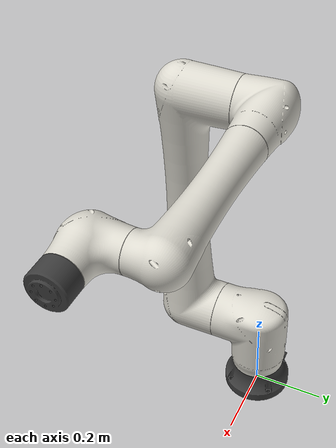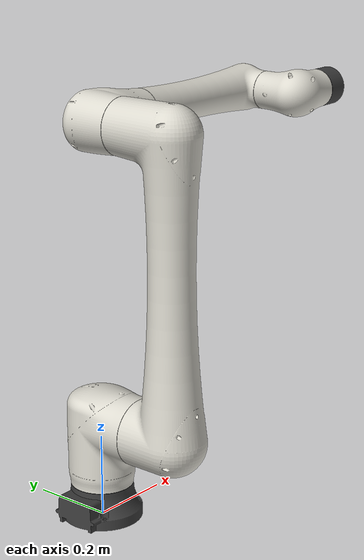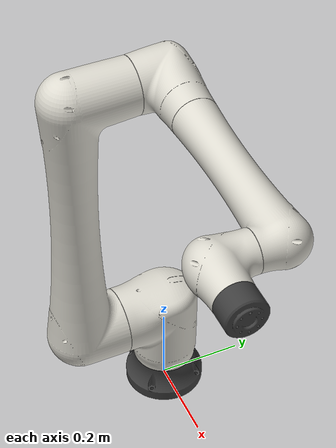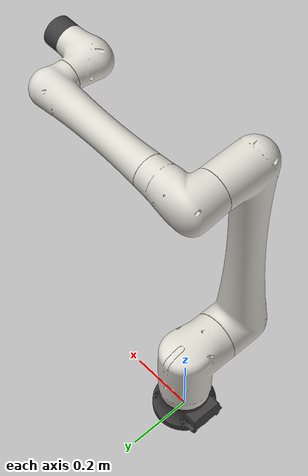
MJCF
<?xml version="1.0" ?>
<!-- MuJoCo model for FANUC CRX10IAL -->
<!-- Auto-generated from fanuc-industrial/fanuc_crx10ia_support -->
<mujoco model="crx10ial">
  <compiler angle="radian" autolimits="true"/>

  <default>
    <default class="crx10ial">
      <joint damping="100" frictionloss="10" armature="1"/>
      <position kp="1000" kv="100"/>
      <default class="visual">
        <geom type="mesh" contype="0" conaffinity="0" group="2"/>
      </default>
      <default class="collision">
        <geom type="mesh" group="3"/>
      </default>
    </default>
  </default>

  <asset>
    <mesh name="base_link_visual" file="../../fanuc-industrial/fanuc_crx10ia_support/meshes/crx10ial/visual/base_link.stl"/>
    <mesh name="base_link_collision" file="../../fanuc-industrial/fanuc_crx10ia_support/meshes/crx10ial/collision/base_link.stl"/>
    <mesh name="link_1_visual" file="../../fanuc-industrial/fanuc_crx10ia_support/meshes/crx10ial/visual/link_1.stl"/>
    <mesh name="link_1_collision" file="../../fanuc-industrial/fanuc_crx10ia_support/meshes/crx10ial/collision/link_1.stl"/>
    <mesh name="link_2_visual" file="../../fanuc-industrial/fanuc_crx10ia_support/meshes/crx10ial/visual/link_2.stl"/>
    <mesh name="link_2_collision" file="../../fanuc-industrial/fanuc_crx10ia_support/meshes/crx10ial/collision/link_2.stl"/>
    <mesh name="link_3_visual" file="../../fanuc-industrial/fanuc_crx10ia_support/meshes/crx10ial/visual/link_3.stl"/>
    <mesh name="link_3_collision" file="../../fanuc-industrial/fanuc_crx10ia_support/meshes/crx10ial/collision/link_3.stl"/>
    <mesh name="link_4_visual" file="../../fanuc-industrial/fanuc_crx10ia_support/meshes/crx10ial/visual/link_4.stl"/>
    <mesh name="link_4_collision" file="../../fanuc-industrial/fanuc_crx10ia_support/meshes/crx10ial/collision/link_4.stl"/>
    <mesh name="link_5_visual" file="../../fanuc-industrial/fanuc_crx10ia_support/meshes/crx10ial/visual/link_5.stl"/>
    <mesh name="link_5_collision" file="../../fanuc-industrial/fanuc_crx10ia_support/meshes/crx10ial/collision/link_5.stl"/>
    <mesh name="link_6_visual" file="../../fanuc-industrial/fanuc_crx10ia_support/meshes/crx10ial/visual/link_6.stl"/>
    <mesh name="link_6_collision" file="../../fanuc-industrial/fanuc_crx10ia_support/meshes/crx10ial/collision/link_6.stl"/>
  </asset>

  <worldbody>
    <body name="base_link" childclass="crx10ial">
      <inertial pos="0 0 0" mass="1.0" diaginertia="0.01 0.01 0.01"/>
      <geom class="visual" mesh="base_link_visual" rgba="0.239 0.239 0.239 1.000"/>
      <geom class="collision" mesh="base_link_collision"/>
      <body name="link_1" pos="0 0 0.245" childclass="crx10ial">
        <joint name="joint_1" type="hinge" axis="0 0 1" range="-3.1416 3.1416"/>
        <inertial pos="0 0 0" mass="1.0" diaginertia="0.01 0.01 0.01"/>
        <geom class="visual" mesh="link_1_visual" rgba="0.860 0.850 0.810 1.000"/>
        <geom class="collision" mesh="link_1_collision"/>
        <body name="link_2" pos="0 0 0" childclass="crx10ial">
          <joint name="joint_2" type="hinge" axis="0 1 0" range="-3.1416 3.1416"/>
          <inertial pos="0 0 0" mass="1.0" diaginertia="0.01 0.01 0.01"/>
          <geom class="visual" mesh="link_2_visual" rgba="0.860 0.850 0.810 1.000"/>
          <geom class="collision" mesh="link_2_collision"/>
          <body name="link_3" pos="0 0 0.710" childclass="crx10ial">
            <joint name="joint_3" type="hinge" axis="0 -1 0" range="-4.7124 4.7124"/>
            <inertial pos="0 0 0" mass="1.0" diaginertia="0.01 0.01 0.01"/>
            <geom class="visual" mesh="link_3_visual" rgba="0.860 0.850 0.810 1.000"/>
            <geom class="collision" mesh="link_3_collision"/>
            <body name="link_4" pos="0 0 0" childclass="crx10ial">
              <joint name="joint_4" type="hinge" axis="-1 0 0" range="-3.3161 3.3161"/>
              <inertial pos="0 0 0" mass="1.0" diaginertia="0.01 0.01 0.01"/>
              <geom class="visual" mesh="link_4_visual" rgba="0.860 0.850 0.810 1.000"/>
              <geom class="collision" mesh="link_4_collision"/>
              <body name="link_5" pos="0.540 -0.150 0" childclass="crx10ial">
                <joint name="joint_5" type="hinge" axis="0 -1 0" range="-3.1416 3.1416"/>
                <inertial pos="0 0 0" mass="1.0" diaginertia="0.01 0.01 0.01"/>
                <geom class="visual" mesh="link_5_visual" rgba="0.860 0.850 0.810 1.000"/>
                <geom class="collision" mesh="link_5_collision"/>
                <body name="link_6" pos="0.160 0 0" childclass="crx10ial">
                  <joint name="joint_6" type="hinge" axis="-1 0 0" range="-3.3161 3.3161"/>
                  <inertial pos="0 0 0" mass="1.0" diaginertia="0.01 0.01 0.01"/>
                  <geom class="visual" mesh="link_6_visual" rgba="0.239 0.239 0.239 1.000"/>
                  <geom class="collision" mesh="link_6_collision"/>
                </body>
              </body>
            </body>
          </body>
        </body>
      </body>
    </body>
  </worldbody>

  <contact>
    <!-- Exclude collisions between adjacent links (parent-child pairs) -->
    <exclude body1="base_link" body2="link_1"/>
    <exclude body1="link_1" body2="link_2"/>
    <exclude body1="link_2" body2="link_3"/>
    <exclude body1="link_3" body2="link_4"/>
    <exclude body1="link_4" body2="link_5"/>
    <exclude body1="link_5" body2="link_6"/>
  </contact>

  <actuator>
    <position name="joint_1_actuator" joint="joint_1" class="crx10ial"/>
    <position name="joint_2_actuator" joint="joint_2" class="crx10ial"/>
    <position name="joint_3_actuator" joint="joint_3" class="crx10ial"/>
    <position name="joint_4_actuator" joint="joint_4" class="crx10ial"/>
    <position name="joint_5_actuator" joint="joint_5" class="crx10ial"/>
    <position name="joint_6_actuator" joint="joint_6" class="crx10ial"/>
  </actuator>
</mujoco>
